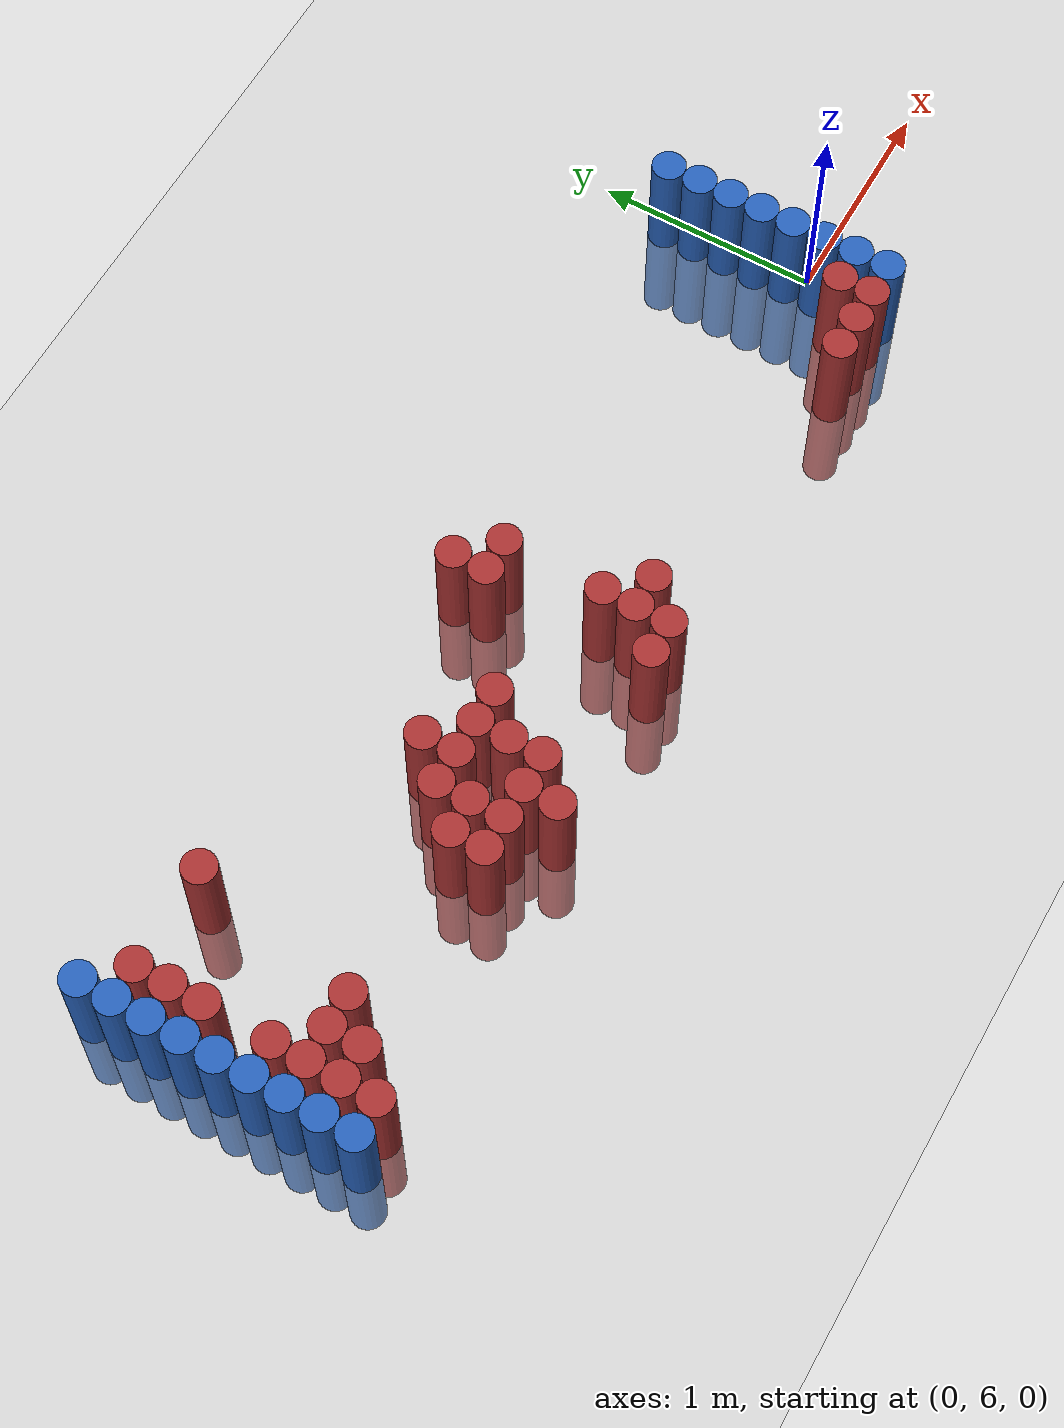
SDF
<sdf version="1.6">
 <world name="default">
  <model name="ground_plane">
   <static>1</static>
   <link name="link">
    <collision name="collision">
     <geometry><plane><normal>0 0 1</normal><size>100 100</size></plane></geometry>
     <surface><friction><ode><mu>100</mu><mu2>50</mu2></ode></friction></surface>
    </collision>
    <visual name="visual">
     <cast_shadows>0</cast_shadows>
     <geometry><plane><normal>0 0 1</normal><size>100 100</size></plane></geometry>
     <material>
      <script><uri>file://media/materials/scripts/gazebo.material</uri><name>Gazebo/Grey</name></script>
     </material>
    </visual>
   </link>
  </model>
  <model name="unit_cylinder_99">
   <static>1</static>
   <pose>-4.425000 5.625000 0.000000 0.000000 0.000000 0.000000</pose>
   <link name="link">
    <inertial>
     <mass>1</mass>
     <inertia><ixx>0.145833</ixx><ixy>0</ixy><ixz>0</ixz><iyy>0.145833</iyy><iyz>0</iyz><izz>0.125</izz></inertia>
    </inertial>
    <collision name="collision">
     <geometry><cylinder><radius>0.075000</radius><length>1</length></cylinder></geometry>
    </collision>
    <visual name="visual">
     <geometry><cylinder><radius>0.075000</radius><length>1</length></cylinder></geometry>
     <material>
      <ambient>0.152000 0.379000 0.720000 1</ambient>
      <diffuse>0.152000 0.379000 0.720000 1</diffuse>
     </material>
     <material>
      <script><name>Gazebo/Grey</name><uri>file://media/materials/scripts/gazebo.material</uri></script>
     </material>
    </visual>
   </link>
  </model>
  <model name="unit_cylinder_100">
   <static>1</static>
   <pose>-4.425000 5.775000 0.000000 0.000000 0.000000 0.000000</pose>
   <link name="link">
    <inertial>
     <mass>1</mass>
     <inertia><ixx>0.145833</ixx><ixy>0</ixy><ixz>0</ixz><iyy>0.145833</iyy><iyz>0</iyz><izz>0.125</izz></inertia>
    </inertial>
    <collision name="collision">
     <geometry><cylinder><radius>0.075000</radius><length>1</length></cylinder></geometry>
    </collision>
    <visual name="visual">
     <geometry><cylinder><radius>0.075000</radius><length>1</length></cylinder></geometry>
     <material>
      <ambient>0.152000 0.379000 0.720000 1</ambient>
      <diffuse>0.152000 0.379000 0.720000 1</diffuse>
     </material>
     <material>
      <script><name>Gazebo/Grey</name><uri>file://media/materials/scripts/gazebo.material</uri></script>
     </material>
    </visual>
   </link>
  </model>
  <model name="unit_cylinder_101">
   <static>1</static>
   <pose>-4.425000 5.925000 0.000000 0.000000 0.000000 0.000000</pose>
   <link name="link">
    <inertial>
     <mass>1</mass>
     <inertia><ixx>0.145833</ixx><ixy>0</ixy><ixz>0</ixz><iyy>0.145833</iyy><iyz>0</iyz><izz>0.125</izz></inertia>
    </inertial>
    <collision name="collision">
     <geometry><cylinder><radius>0.075000</radius><length>1</length></cylinder></geometry>
    </collision>
    <visual name="visual">
     <geometry><cylinder><radius>0.075000</radius><length>1</length></cylinder></geometry>
     <material>
      <ambient>0.152000 0.379000 0.720000 1</ambient>
      <diffuse>0.152000 0.379000 0.720000 1</diffuse>
     </material>
     <material>
      <script><name>Gazebo/Grey</name><uri>file://media/materials/scripts/gazebo.material</uri></script>
     </material>
    </visual>
   </link>
  </model>
  <model name="unit_cylinder_102">
   <static>1</static>
   <pose>-4.425000 6.075000 0.000000 0.000000 0.000000 0.000000</pose>
   <link name="link">
    <inertial>
     <mass>1</mass>
     <inertia><ixx>0.145833</ixx><ixy>0</ixy><ixz>0</ixz><iyy>0.145833</iyy><iyz>0</iyz><izz>0.125</izz></inertia>
    </inertial>
    <collision name="collision">
     <geometry><cylinder><radius>0.075000</radius><length>1</length></cylinder></geometry>
    </collision>
    <visual name="visual">
     <geometry><cylinder><radius>0.075000</radius><length>1</length></cylinder></geometry>
     <material>
      <ambient>0.152000 0.379000 0.720000 1</ambient>
      <diffuse>0.152000 0.379000 0.720000 1</diffuse>
     </material>
     <material>
      <script><name>Gazebo/Grey</name><uri>file://media/materials/scripts/gazebo.material</uri></script>
     </material>
    </visual>
   </link>
  </model>
  <model name="unit_cylinder_103">
   <static>1</static>
   <pose>-4.425000 6.225000 0.000000 0.000000 0.000000 0.000000</pose>
   <link name="link">
    <inertial>
     <mass>1</mass>
     <inertia><ixx>0.145833</ixx><ixy>0</ixy><ixz>0</ixz><iyy>0.145833</iyy><iyz>0</iyz><izz>0.125</izz></inertia>
    </inertial>
    <collision name="collision">
     <geometry><cylinder><radius>0.075000</radius><length>1</length></cylinder></geometry>
    </collision>
    <visual name="visual">
     <geometry><cylinder><radius>0.075000</radius><length>1</length></cylinder></geometry>
     <material>
      <ambient>0.152000 0.379000 0.720000 1</ambient>
      <diffuse>0.152000 0.379000 0.720000 1</diffuse>
     </material>
     <material>
      <script><name>Gazebo/Grey</name><uri>file://media/materials/scripts/gazebo.material</uri></script>
     </material>
    </visual>
   </link>
  </model>
  <model name="unit_cylinder_104">
   <static>1</static>
   <pose>-4.425000 6.375000 0.000000 0.000000 0.000000 0.000000</pose>
   <link name="link">
    <inertial>
     <mass>1</mass>
     <inertia><ixx>0.145833</ixx><ixy>0</ixy><ixz>0</ixz><iyy>0.145833</iyy><iyz>0</iyz><izz>0.125</izz></inertia>
    </inertial>
    <collision name="collision">
     <geometry><cylinder><radius>0.075000</radius><length>1</length></cylinder></geometry>
    </collision>
    <visual name="visual">
     <geometry><cylinder><radius>0.075000</radius><length>1</length></cylinder></geometry>
     <material>
      <ambient>0.152000 0.379000 0.720000 1</ambient>
      <diffuse>0.152000 0.379000 0.720000 1</diffuse>
     </material>
     <material>
      <script><name>Gazebo/Grey</name><uri>file://media/materials/scripts/gazebo.material</uri></script>
     </material>
    </visual>
   </link>
  </model>
  <model name="unit_cylinder_105">
   <static>1</static>
   <pose>-4.425000 6.525000 0.000000 0.000000 0.000000 0.000000</pose>
   <link name="link">
    <inertial>
     <mass>1</mass>
     <inertia><ixx>0.145833</ixx><ixy>0</ixy><ixz>0</ixz><iyy>0.145833</iyy><iyz>0</iyz><izz>0.125</izz></inertia>
    </inertial>
    <collision name="collision">
     <geometry><cylinder><radius>0.075000</radius><length>1</length></cylinder></geometry>
    </collision>
    <visual name="visual">
     <geometry><cylinder><radius>0.075000</radius><length>1</length></cylinder></geometry>
     <material>
      <ambient>0.152000 0.379000 0.720000 1</ambient>
      <diffuse>0.152000 0.379000 0.720000 1</diffuse>
     </material>
     <material>
      <script><name>Gazebo/Grey</name><uri>file://media/materials/scripts/gazebo.material</uri></script>
     </material>
    </visual>
   </link>
  </model>
  <model name="unit_cylinder_106">
   <static>1</static>
   <pose>-4.425000 6.675000 0.000000 0.000000 0.000000 0.000000</pose>
   <link name="link">
    <inertial>
     <mass>1</mass>
     <inertia><ixx>0.145833</ixx><ixy>0</ixy><ixz>0</ixz><iyy>0.145833</iyy><iyz>0</iyz><izz>0.125</izz></inertia>
    </inertial>
    <collision name="collision">
     <geometry><cylinder><radius>0.075000</radius><length>1</length></cylinder></geometry>
    </collision>
    <visual name="visual">
     <geometry><cylinder><radius>0.075000</radius><length>1</length></cylinder></geometry>
     <material>
      <ambient>0.152000 0.379000 0.720000 1</ambient>
      <diffuse>0.152000 0.379000 0.720000 1</diffuse>
     </material>
     <material>
      <script><name>Gazebo/Grey</name><uri>file://media/materials/scripts/gazebo.material</uri></script>
     </material>
    </visual>
   </link>
  </model>
  <model name="unit_cylinder_107">
   <static>1</static>
   <pose>-4.425000 6.825000 0.000000 0.000000 0.000000 0.000000</pose>
   <link name="link">
    <inertial>
     <mass>1</mass>
     <inertia><ixx>0.145833</ixx><ixy>0</ixy><ixz>0</ixz><iyy>0.145833</iyy><iyz>0</iyz><izz>0.125</izz></inertia>
    </inertial>
    <collision name="collision">
     <geometry><cylinder><radius>0.075000</radius><length>1</length></cylinder></geometry>
    </collision>
    <visual name="visual">
     <geometry><cylinder><radius>0.075000</radius><length>1</length></cylinder></geometry>
     <material>
      <ambient>0.152000 0.379000 0.720000 1</ambient>
      <diffuse>0.152000 0.379000 0.720000 1</diffuse>
     </material>
     <material>
      <script><name>Gazebo/Grey</name><uri>file://media/materials/scripts/gazebo.material</uri></script>
     </material>
    </visual>
   </link>
  </model>
  <model name="unit_cylinder_127">
   <static>1</static>
   <pose>-4.275000 5.625000 0.000000 0.000000 0.000000 0.000000</pose>
   <link name="link">
    <inertial>
     <mass>1</mass>
     <inertia><ixx>0.145833</ixx><ixy>0</ixy><ixz>0</ixz><iyy>0.145833</iyy><iyz>0</iyz><izz>0.125</izz></inertia>
    </inertial>
    <collision name="collision">
     <geometry><cylinder><radius>0.075000</radius><length>1</length></cylinder></geometry>
    </collision>
    <visual name="visual">
     <geometry><cylinder><radius>0.075000</radius><length>1</length></cylinder></geometry>
     <material>
      <ambient>0.648000 0.192000 0.192000 1</ambient>
      <diffuse>0.648000 0.192000 0.192000 1</diffuse>
     </material>
     <material>
      <script><name>Gazebo/Grey</name><uri>file://media/materials/scripts/gazebo.material</uri></script>
     </material>
    </visual>
   </link>
  </model>
  <model name="unit_cylinder_128">
   <static>1</static>
   <pose>-4.275000 5.775000 0.000000 0.000000 0.000000 0.000000</pose>
   <link name="link">
    <inertial>
     <mass>1</mass>
     <inertia><ixx>0.145833</ixx><ixy>0</ixy><ixz>0</ixz><iyy>0.145833</iyy><iyz>0</iyz><izz>0.125</izz></inertia>
    </inertial>
    <collision name="collision">
     <geometry><cylinder><radius>0.075000</radius><length>1</length></cylinder></geometry>
    </collision>
    <visual name="visual">
     <geometry><cylinder><radius>0.075000</radius><length>1</length></cylinder></geometry>
     <material>
      <ambient>0.648000 0.192000 0.192000 1</ambient>
      <diffuse>0.648000 0.192000 0.192000 1</diffuse>
     </material>
     <material>
      <script><name>Gazebo/Grey</name><uri>file://media/materials/scripts/gazebo.material</uri></script>
     </material>
    </visual>
   </link>
  </model>
  <model name="unit_cylinder_129">
   <static>1</static>
   <pose>-4.275000 5.925000 0.000000 0.000000 0.000000 0.000000</pose>
   <link name="link">
    <inertial>
     <mass>1</mass>
     <inertia><ixx>0.145833</ixx><ixy>0</ixy><ixz>0</ixz><iyy>0.145833</iyy><iyz>0</iyz><izz>0.125</izz></inertia>
    </inertial>
    <collision name="collision">
     <geometry><cylinder><radius>0.075000</radius><length>1</length></cylinder></geometry>
    </collision>
    <visual name="visual">
     <geometry><cylinder><radius>0.075000</radius><length>1</length></cylinder></geometry>
     <material>
      <ambient>0.648000 0.192000 0.192000 1</ambient>
      <diffuse>0.648000 0.192000 0.192000 1</diffuse>
     </material>
     <material>
      <script><name>Gazebo/Grey</name><uri>file://media/materials/scripts/gazebo.material</uri></script>
     </material>
    </visual>
   </link>
  </model>
  <model name="unit_cylinder_130">
   <static>1</static>
   <pose>-4.275000 6.075000 0.000000 0.000000 0.000000 0.000000</pose>
   <link name="link">
    <inertial>
     <mass>1</mass>
     <inertia><ixx>0.145833</ixx><ixy>0</ixy><ixz>0</ixz><iyy>0.145833</iyy><iyz>0</iyz><izz>0.125</izz></inertia>
    </inertial>
    <collision name="collision">
     <geometry><cylinder><radius>0.075000</radius><length>1</length></cylinder></geometry>
    </collision>
    <visual name="visual">
     <geometry><cylinder><radius>0.075000</radius><length>1</length></cylinder></geometry>
     <material>
      <ambient>0.648000 0.192000 0.192000 1</ambient>
      <diffuse>0.648000 0.192000 0.192000 1</diffuse>
     </material>
     <material>
      <script><name>Gazebo/Grey</name><uri>file://media/materials/scripts/gazebo.material</uri></script>
     </material>
    </visual>
   </link>
  </model>
  <model name="unit_cylinder_131">
   <static>1</static>
   <pose>-4.275000 6.375000 0.000000 0.000000 0.000000 0.000000</pose>
   <link name="link">
    <inertial>
     <mass>1</mass>
     <inertia><ixx>0.145833</ixx><ixy>0</ixy><ixz>0</ixz><iyy>0.145833</iyy><iyz>0</iyz><izz>0.125</izz></inertia>
    </inertial>
    <collision name="collision">
     <geometry><cylinder><radius>0.075000</radius><length>1</length></cylinder></geometry>
    </collision>
    <visual name="visual">
     <geometry><cylinder><radius>0.075000</radius><length>1</length></cylinder></geometry>
     <material>
      <ambient>0.648000 0.192000 0.192000 1</ambient>
      <diffuse>0.648000 0.192000 0.192000 1</diffuse>
     </material>
     <material>
      <script><name>Gazebo/Grey</name><uri>file://media/materials/scripts/gazebo.material</uri></script>
     </material>
    </visual>
   </link>
  </model>
  <model name="unit_cylinder_132">
   <static>1</static>
   <pose>-4.275000 6.525000 0.000000 0.000000 0.000000 0.000000</pose>
   <link name="link">
    <inertial>
     <mass>1</mass>
     <inertia><ixx>0.145833</ixx><ixy>0</ixy><ixz>0</ixz><iyy>0.145833</iyy><iyz>0</iyz><izz>0.125</izz></inertia>
    </inertial>
    <collision name="collision">
     <geometry><cylinder><radius>0.075000</radius><length>1</length></cylinder></geometry>
    </collision>
    <visual name="visual">
     <geometry><cylinder><radius>0.075000</radius><length>1</length></cylinder></geometry>
     <material>
      <ambient>0.648000 0.192000 0.192000 1</ambient>
      <diffuse>0.648000 0.192000 0.192000 1</diffuse>
     </material>
     <material>
      <script><name>Gazebo/Grey</name><uri>file://media/materials/scripts/gazebo.material</uri></script>
     </material>
    </visual>
   </link>
  </model>
  <model name="unit_cylinder_133">
   <static>1</static>
   <pose>-4.275000 6.675000 0.000000 0.000000 0.000000 0.000000</pose>
   <link name="link">
    <inertial>
     <mass>1</mass>
     <inertia><ixx>0.145833</ixx><ixy>0</ixy><ixz>0</ixz><iyy>0.145833</iyy><iyz>0</iyz><izz>0.125</izz></inertia>
    </inertial>
    <collision name="collision">
     <geometry><cylinder><radius>0.075000</radius><length>1</length></cylinder></geometry>
    </collision>
    <visual name="visual">
     <geometry><cylinder><radius>0.075000</radius><length>1</length></cylinder></geometry>
     <material>
      <ambient>0.648000 0.192000 0.192000 1</ambient>
      <diffuse>0.648000 0.192000 0.192000 1</diffuse>
     </material>
     <material>
      <script><name>Gazebo/Grey</name><uri>file://media/materials/scripts/gazebo.material</uri></script>
     </material>
    </visual>
   </link>
  </model>
  <model name="unit_cylinder_136">
   <static>1</static>
   <pose>-4.125000 5.775000 0.000000 0.000000 0.000000 0.000000</pose>
   <link name="link">
    <inertial>
     <mass>1</mass>
     <inertia><ixx>0.145833</ixx><ixy>0</ixy><ixz>0</ixz><iyy>0.145833</iyy><iyz>0</iyz><izz>0.125</izz></inertia>
    </inertial>
    <collision name="collision">
     <geometry><cylinder><radius>0.075000</radius><length>1</length></cylinder></geometry>
    </collision>
    <visual name="visual">
     <geometry><cylinder><radius>0.075000</radius><length>1</length></cylinder></geometry>
     <material>
      <ambient>0.648000 0.192000 0.192000 1</ambient>
      <diffuse>0.648000 0.192000 0.192000 1</diffuse>
     </material>
     <material>
      <script><name>Gazebo/Grey</name><uri>file://media/materials/scripts/gazebo.material</uri></script>
     </material>
    </visual>
   </link>
  </model>
  <model name="unit_cylinder_137">
   <static>1</static>
   <pose>-4.125000 5.925000 0.000000 0.000000 0.000000 0.000000</pose>
   <link name="link">
    <inertial>
     <mass>1</mass>
     <inertia><ixx>0.145833</ixx><ixy>0</ixy><ixz>0</ixz><iyy>0.145833</iyy><iyz>0</iyz><izz>0.125</izz></inertia>
    </inertial>
    <collision name="collision">
     <geometry><cylinder><radius>0.075000</radius><length>1</length></cylinder></geometry>
    </collision>
    <visual name="visual">
     <geometry><cylinder><radius>0.075000</radius><length>1</length></cylinder></geometry>
     <material>
      <ambient>0.648000 0.192000 0.192000 1</ambient>
      <diffuse>0.648000 0.192000 0.192000 1</diffuse>
     </material>
     <material>
      <script><name>Gazebo/Grey</name><uri>file://media/materials/scripts/gazebo.material</uri></script>
     </material>
    </visual>
   </link>
  </model>
  <model name="unit_cylinder_140">
   <static>1</static>
   <pose>-3.975000 5.925000 0.000000 0.000000 0.000000 0.000000</pose>
   <link name="link">
    <inertial>
     <mass>1</mass>
     <inertia><ixx>0.145833</ixx><ixy>0</ixy><ixz>0</ixz><iyy>0.145833</iyy><iyz>0</iyz><izz>0.125</izz></inertia>
    </inertial>
    <collision name="collision">
     <geometry><cylinder><radius>0.075000</radius><length>1</length></cylinder></geometry>
    </collision>
    <visual name="visual">
     <geometry><cylinder><radius>0.075000</radius><length>1</length></cylinder></geometry>
     <material>
      <ambient>0.648000 0.192000 0.192000 1</ambient>
      <diffuse>0.648000 0.192000 0.192000 1</diffuse>
     </material>
     <material>
      <script><name>Gazebo/Grey</name><uri>file://media/materials/scripts/gazebo.material</uri></script>
     </material>
    </visual>
   </link>
  </model>
  <model name="unit_cylinder_147">
   <static>1</static>
   <pose>-3.825000 6.675000 0.000000 0.000000 0.000000 0.000000</pose>
   <link name="link">
    <inertial>
     <mass>1</mass>
     <inertia><ixx>0.145833</ixx><ixy>0</ixy><ixz>0</ixz><iyy>0.145833</iyy><iyz>0</iyz><izz>0.125</izz></inertia>
    </inertial>
    <collision name="collision">
     <geometry><cylinder><radius>0.075000</radius><length>1</length></cylinder></geometry>
    </collision>
    <visual name="visual">
     <geometry><cylinder><radius>0.075000</radius><length>1</length></cylinder></geometry>
     <material>
      <ambient>0.648000 0.192000 0.192000 1</ambient>
      <diffuse>0.648000 0.192000 0.192000 1</diffuse>
     </material>
     <material>
      <script><name>Gazebo/Grey</name><uri>file://media/materials/scripts/gazebo.material</uri></script>
     </material>
    </visual>
   </link>
  </model>
  <model name="unit_cylinder_169">
   <static>1</static>
   <pose>-3.225000 5.775000 0.000000 0.000000 0.000000 0.000000</pose>
   <link name="link">
    <inertial>
     <mass>1</mass>
     <inertia><ixx>0.145833</ixx><ixy>0</ixy><ixz>0</ixz><iyy>0.145833</iyy><iyz>0</iyz><izz>0.125</izz></inertia>
    </inertial>
    <collision name="collision">
     <geometry><cylinder><radius>0.075000</radius><length>1</length></cylinder></geometry>
    </collision>
    <visual name="visual">
     <geometry><cylinder><radius>0.075000</radius><length>1</length></cylinder></geometry>
     <material>
      <ambient>0.648000 0.192000 0.192000 1</ambient>
      <diffuse>0.648000 0.192000 0.192000 1</diffuse>
     </material>
     <material>
      <script><name>Gazebo/Grey</name><uri>file://media/materials/scripts/gazebo.material</uri></script>
     </material>
    </visual>
   </link>
  </model>
  <model name="unit_cylinder_170">
   <static>1</static>
   <pose>-3.225000 5.925000 0.000000 0.000000 0.000000 0.000000</pose>
   <link name="link">
    <inertial>
     <mass>1</mass>
     <inertia><ixx>0.145833</ixx><ixy>0</ixy><ixz>0</ixz><iyy>0.145833</iyy><iyz>0</iyz><izz>0.125</izz></inertia>
    </inertial>
    <collision name="collision">
     <geometry><cylinder><radius>0.075000</radius><length>1</length></cylinder></geometry>
    </collision>
    <visual name="visual">
     <geometry><cylinder><radius>0.075000</radius><length>1</length></cylinder></geometry>
     <material>
      <ambient>0.648000 0.192000 0.192000 1</ambient>
      <diffuse>0.648000 0.192000 0.192000 1</diffuse>
     </material>
     <material>
      <script><name>Gazebo/Grey</name><uri>file://media/materials/scripts/gazebo.material</uri></script>
     </material>
    </visual>
   </link>
  </model>
  <model name="unit_cylinder_183">
   <static>1</static>
   <pose>-3.075000 5.775000 0.000000 0.000000 0.000000 0.000000</pose>
   <link name="link">
    <inertial>
     <mass>1</mass>
     <inertia><ixx>0.145833</ixx><ixy>0</ixy><ixz>0</ixz><iyy>0.145833</iyy><iyz>0</iyz><izz>0.125</izz></inertia>
    </inertial>
    <collision name="collision">
     <geometry><cylinder><radius>0.075000</radius><length>1</length></cylinder></geometry>
    </collision>
    <visual name="visual">
     <geometry><cylinder><radius>0.075000</radius><length>1</length></cylinder></geometry>
     <material>
      <ambient>0.648000 0.192000 0.192000 1</ambient>
      <diffuse>0.648000 0.192000 0.192000 1</diffuse>
     </material>
     <material>
      <script><name>Gazebo/Grey</name><uri>file://media/materials/scripts/gazebo.material</uri></script>
     </material>
    </visual>
   </link>
  </model>
  <model name="unit_cylinder_184">
   <static>1</static>
   <pose>-3.075000 5.925000 0.000000 0.000000 0.000000 0.000000</pose>
   <link name="link">
    <inertial>
     <mass>1</mass>
     <inertia><ixx>0.145833</ixx><ixy>0</ixy><ixz>0</ixz><iyy>0.145833</iyy><iyz>0</iyz><izz>0.125</izz></inertia>
    </inertial>
    <collision name="collision">
     <geometry><cylinder><radius>0.075000</radius><length>1</length></cylinder></geometry>
    </collision>
    <visual name="visual">
     <geometry><cylinder><radius>0.075000</radius><length>1</length></cylinder></geometry>
     <material>
      <ambient>0.648000 0.192000 0.192000 1</ambient>
      <diffuse>0.648000 0.192000 0.192000 1</diffuse>
     </material>
     <material>
      <script><name>Gazebo/Grey</name><uri>file://media/materials/scripts/gazebo.material</uri></script>
     </material>
    </visual>
   </link>
  </model>
  <model name="unit_cylinder_185">
   <static>1</static>
   <pose>-3.075000 6.075000 0.000000 0.000000 0.000000 0.000000</pose>
   <link name="link">
    <inertial>
     <mass>1</mass>
     <inertia><ixx>0.145833</ixx><ixy>0</ixy><ixz>0</ixz><iyy>0.145833</iyy><iyz>0</iyz><izz>0.125</izz></inertia>
    </inertial>
    <collision name="collision">
     <geometry><cylinder><radius>0.075000</radius><length>1</length></cylinder></geometry>
    </collision>
    <visual name="visual">
     <geometry><cylinder><radius>0.075000</radius><length>1</length></cylinder></geometry>
     <material>
      <ambient>0.648000 0.192000 0.192000 1</ambient>
      <diffuse>0.648000 0.192000 0.192000 1</diffuse>
     </material>
     <material>
      <script><name>Gazebo/Grey</name><uri>file://media/materials/scripts/gazebo.material</uri></script>
     </material>
    </visual>
   </link>
  </model>
  <model name="unit_cylinder_195">
   <static>1</static>
   <pose>-2.925000 5.625000 0.000000 0.000000 0.000000 0.000000</pose>
   <link name="link">
    <inertial>
     <mass>1</mass>
     <inertia><ixx>0.145833</ixx><ixy>0</ixy><ixz>0</ixz><iyy>0.145833</iyy><iyz>0</iyz><izz>0.125</izz></inertia>
    </inertial>
    <collision name="collision">
     <geometry><cylinder><radius>0.075000</radius><length>1</length></cylinder></geometry>
    </collision>
    <visual name="visual">
     <geometry><cylinder><radius>0.075000</radius><length>1</length></cylinder></geometry>
     <material>
      <ambient>0.648000 0.192000 0.192000 1</ambient>
      <diffuse>0.648000 0.192000 0.192000 1</diffuse>
     </material>
     <material>
      <script><name>Gazebo/Grey</name><uri>file://media/materials/scripts/gazebo.material</uri></script>
     </material>
    </visual>
   </link>
  </model>
  <model name="unit_cylinder_196">
   <static>1</static>
   <pose>-2.925000 5.775000 0.000000 0.000000 0.000000 0.000000</pose>
   <link name="link">
    <inertial>
     <mass>1</mass>
     <inertia><ixx>0.145833</ixx><ixy>0</ixy><ixz>0</ixz><iyy>0.145833</iyy><iyz>0</iyz><izz>0.125</izz></inertia>
    </inertial>
    <collision name="collision">
     <geometry><cylinder><radius>0.075000</radius><length>1</length></cylinder></geometry>
    </collision>
    <visual name="visual">
     <geometry><cylinder><radius>0.075000</radius><length>1</length></cylinder></geometry>
     <material>
      <ambient>0.648000 0.192000 0.192000 1</ambient>
      <diffuse>0.648000 0.192000 0.192000 1</diffuse>
     </material>
     <material>
      <script><name>Gazebo/Grey</name><uri>file://media/materials/scripts/gazebo.material</uri></script>
     </material>
    </visual>
   </link>
  </model>
  <model name="unit_cylinder_197">
   <static>1</static>
   <pose>-2.925000 6.075000 0.000000 0.000000 0.000000 0.000000</pose>
   <link name="link">
    <inertial>
     <mass>1</mass>
     <inertia><ixx>0.145833</ixx><ixy>0</ixy><ixz>0</ixz><iyy>0.145833</iyy><iyz>0</iyz><izz>0.125</izz></inertia>
    </inertial>
    <collision name="collision">
     <geometry><cylinder><radius>0.075000</radius><length>1</length></cylinder></geometry>
    </collision>
    <visual name="visual">
     <geometry><cylinder><radius>0.075000</radius><length>1</length></cylinder></geometry>
     <material>
      <ambient>0.648000 0.192000 0.192000 1</ambient>
      <diffuse>0.648000 0.192000 0.192000 1</diffuse>
     </material>
     <material>
      <script><name>Gazebo/Grey</name><uri>file://media/materials/scripts/gazebo.material</uri></script>
     </material>
    </visual>
   </link>
  </model>
  <model name="unit_cylinder_198">
   <static>1</static>
   <pose>-2.925000 6.225000 0.000000 0.000000 0.000000 0.000000</pose>
   <link name="link">
    <inertial>
     <mass>1</mass>
     <inertia><ixx>0.145833</ixx><ixy>0</ixy><ixz>0</ixz><iyy>0.145833</iyy><iyz>0</iyz><izz>0.125</izz></inertia>
    </inertial>
    <collision name="collision">
     <geometry><cylinder><radius>0.075000</radius><length>1</length></cylinder></geometry>
    </collision>
    <visual name="visual">
     <geometry><cylinder><radius>0.075000</radius><length>1</length></cylinder></geometry>
     <material>
      <ambient>0.648000 0.192000 0.192000 1</ambient>
      <diffuse>0.648000 0.192000 0.192000 1</diffuse>
     </material>
     <material>
      <script><name>Gazebo/Grey</name><uri>file://media/materials/scripts/gazebo.material</uri></script>
     </material>
    </visual>
   </link>
  </model>
  <model name="unit_cylinder_202">
   <static>1</static>
   <pose>-2.775000 5.775000 0.000000 0.000000 0.000000 0.000000</pose>
   <link name="link">
    <inertial>
     <mass>1</mass>
     <inertia><ixx>0.145833</ixx><ixy>0</ixy><ixz>0</ixz><iyy>0.145833</iyy><iyz>0</iyz><izz>0.125</izz></inertia>
    </inertial>
    <collision name="collision">
     <geometry><cylinder><radius>0.075000</radius><length>1</length></cylinder></geometry>
    </collision>
    <visual name="visual">
     <geometry><cylinder><radius>0.075000</radius><length>1</length></cylinder></geometry>
     <material>
      <ambient>0.648000 0.192000 0.192000 1</ambient>
      <diffuse>0.648000 0.192000 0.192000 1</diffuse>
     </material>
     <material>
      <script><name>Gazebo/Grey</name><uri>file://media/materials/scripts/gazebo.material</uri></script>
     </material>
    </visual>
   </link>
  </model>
  <model name="unit_cylinder_203">
   <static>1</static>
   <pose>-2.775000 5.925000 0.000000 0.000000 0.000000 0.000000</pose>
   <link name="link">
    <inertial>
     <mass>1</mass>
     <inertia><ixx>0.145833</ixx><ixy>0</ixy><ixz>0</ixz><iyy>0.145833</iyy><iyz>0</iyz><izz>0.125</izz></inertia>
    </inertial>
    <collision name="collision">
     <geometry><cylinder><radius>0.075000</radius><length>1</length></cylinder></geometry>
    </collision>
    <visual name="visual">
     <geometry><cylinder><radius>0.075000</radius><length>1</length></cylinder></geometry>
     <material>
      <ambient>0.648000 0.192000 0.192000 1</ambient>
      <diffuse>0.648000 0.192000 0.192000 1</diffuse>
     </material>
     <material>
      <script><name>Gazebo/Grey</name><uri>file://media/materials/scripts/gazebo.material</uri></script>
     </material>
    </visual>
   </link>
  </model>
  <model name="unit_cylinder_204">
   <static>1</static>
   <pose>-2.775000 6.075000 0.000000 0.000000 0.000000 0.000000</pose>
   <link name="link">
    <inertial>
     <mass>1</mass>
     <inertia><ixx>0.145833</ixx><ixy>0</ixy><ixz>0</ixz><iyy>0.145833</iyy><iyz>0</iyz><izz>0.125</izz></inertia>
    </inertial>
    <collision name="collision">
     <geometry><cylinder><radius>0.075000</radius><length>1</length></cylinder></geometry>
    </collision>
    <visual name="visual">
     <geometry><cylinder><radius>0.075000</radius><length>1</length></cylinder></geometry>
     <material>
      <ambient>0.648000 0.192000 0.192000 1</ambient>
      <diffuse>0.648000 0.192000 0.192000 1</diffuse>
     </material>
     <material>
      <script><name>Gazebo/Grey</name><uri>file://media/materials/scripts/gazebo.material</uri></script>
     </material>
    </visual>
   </link>
  </model>
  <model name="unit_cylinder_210">
   <static>1</static>
   <pose>-2.625000 6.075000 0.000000 0.000000 0.000000 0.000000</pose>
   <link name="link">
    <inertial>
     <mass>1</mass>
     <inertia><ixx>0.145833</ixx><ixy>0</ixy><ixz>0</ixz><iyy>0.145833</iyy><iyz>0</iyz><izz>0.125</izz></inertia>
    </inertial>
    <collision name="collision">
     <geometry><cylinder><radius>0.075000</radius><length>1</length></cylinder></geometry>
    </collision>
    <visual name="visual">
     <geometry><cylinder><radius>0.075000</radius><length>1</length></cylinder></geometry>
     <material>
      <ambient>0.648000 0.192000 0.192000 1</ambient>
      <diffuse>0.648000 0.192000 0.192000 1</diffuse>
     </material>
     <material>
      <script><name>Gazebo/Grey</name><uri>file://media/materials/scripts/gazebo.material</uri></script>
     </material>
    </visual>
   </link>
  </model>
  <model name="unit_cylinder_227">
   <static>1</static>
   <pose>-2.175000 5.625000 0.000000 0.000000 0.000000 0.000000</pose>
   <link name="link">
    <inertial>
     <mass>1</mass>
     <inertia><ixx>0.145833</ixx><ixy>0</ixy><ixz>0</ixz><iyy>0.145833</iyy><iyz>0</iyz><izz>0.125</izz></inertia>
    </inertial>
    <collision name="collision">
     <geometry><cylinder><radius>0.075000</radius><length>1</length></cylinder></geometry>
    </collision>
    <visual name="visual">
     <geometry><cylinder><radius>0.075000</radius><length>1</length></cylinder></geometry>
     <material>
      <ambient>0.648000 0.192000 0.192000 1</ambient>
      <diffuse>0.648000 0.192000 0.192000 1</diffuse>
     </material>
     <material>
      <script><name>Gazebo/Grey</name><uri>file://media/materials/scripts/gazebo.material</uri></script>
     </material>
    </visual>
   </link>
  </model>
  <model name="unit_cylinder_228">
   <static>1</static>
   <pose>-2.175000 6.375000 0.000000 0.000000 0.000000 0.000000</pose>
   <link name="link">
    <inertial>
     <mass>1</mass>
     <inertia><ixx>0.145833</ixx><ixy>0</ixy><ixz>0</ixz><iyy>0.145833</iyy><iyz>0</iyz><izz>0.125</izz></inertia>
    </inertial>
    <collision name="collision">
     <geometry><cylinder><radius>0.075000</radius><length>1</length></cylinder></geometry>
    </collision>
    <visual name="visual">
     <geometry><cylinder><radius>0.075000</radius><length>1</length></cylinder></geometry>
     <material>
      <ambient>0.648000 0.192000 0.192000 1</ambient>
      <diffuse>0.648000 0.192000 0.192000 1</diffuse>
     </material>
     <material>
      <script><name>Gazebo/Grey</name><uri>file://media/materials/scripts/gazebo.material</uri></script>
     </material>
    </visual>
   </link>
  </model>
  <model name="unit_cylinder_229">
   <static>1</static>
   <pose>-2.175000 6.525000 0.000000 0.000000 0.000000 0.000000</pose>
   <link name="link">
    <inertial>
     <mass>1</mass>
     <inertia><ixx>0.145833</ixx><ixy>0</ixy><ixz>0</ixz><iyy>0.145833</iyy><iyz>0</iyz><izz>0.125</izz></inertia>
    </inertial>
    <collision name="collision">
     <geometry><cylinder><radius>0.075000</radius><length>1</length></cylinder></geometry>
    </collision>
    <visual name="visual">
     <geometry><cylinder><radius>0.075000</radius><length>1</length></cylinder></geometry>
     <material>
      <ambient>0.648000 0.192000 0.192000 1</ambient>
      <diffuse>0.648000 0.192000 0.192000 1</diffuse>
     </material>
     <material>
      <script><name>Gazebo/Grey</name><uri>file://media/materials/scripts/gazebo.material</uri></script>
     </material>
    </visual>
   </link>
  </model>
  <model name="unit_cylinder_233">
   <static>1</static>
   <pose>-2.025000 5.625000 0.000000 0.000000 0.000000 0.000000</pose>
   <link name="link">
    <inertial>
     <mass>1</mass>
     <inertia><ixx>0.145833</ixx><ixy>0</ixy><ixz>0</ixz><iyy>0.145833</iyy><iyz>0</iyz><izz>0.125</izz></inertia>
    </inertial>
    <collision name="collision">
     <geometry><cylinder><radius>0.075000</radius><length>1</length></cylinder></geometry>
    </collision>
    <visual name="visual">
     <geometry><cylinder><radius>0.075000</radius><length>1</length></cylinder></geometry>
     <material>
      <ambient>0.648000 0.192000 0.192000 1</ambient>
      <diffuse>0.648000 0.192000 0.192000 1</diffuse>
     </material>
     <material>
      <script><name>Gazebo/Grey</name><uri>file://media/materials/scripts/gazebo.material</uri></script>
     </material>
    </visual>
   </link>
  </model>
  <model name="unit_cylinder_234">
   <static>1</static>
   <pose>-2.025000 5.775000 0.000000 0.000000 0.000000 0.000000</pose>
   <link name="link">
    <inertial>
     <mass>1</mass>
     <inertia><ixx>0.145833</ixx><ixy>0</ixy><ixz>0</ixz><iyy>0.145833</iyy><iyz>0</iyz><izz>0.125</izz></inertia>
    </inertial>
    <collision name="collision">
     <geometry><cylinder><radius>0.075000</radius><length>1</length></cylinder></geometry>
    </collision>
    <visual name="visual">
     <geometry><cylinder><radius>0.075000</radius><length>1</length></cylinder></geometry>
     <material>
      <ambient>0.648000 0.192000 0.192000 1</ambient>
      <diffuse>0.648000 0.192000 0.192000 1</diffuse>
     </material>
     <material>
      <script><name>Gazebo/Grey</name><uri>file://media/materials/scripts/gazebo.material</uri></script>
     </material>
    </visual>
   </link>
  </model>
  <model name="unit_cylinder_235">
   <static>1</static>
   <pose>-2.025000 5.925000 0.000000 0.000000 0.000000 0.000000</pose>
   <link name="link">
    <inertial>
     <mass>1</mass>
     <inertia><ixx>0.145833</ixx><ixy>0</ixy><ixz>0</ixz><iyy>0.145833</iyy><iyz>0</iyz><izz>0.125</izz></inertia>
    </inertial>
    <collision name="collision">
     <geometry><cylinder><radius>0.075000</radius><length>1</length></cylinder></geometry>
    </collision>
    <visual name="visual">
     <geometry><cylinder><radius>0.075000</radius><length>1</length></cylinder></geometry>
     <material>
      <ambient>0.648000 0.192000 0.192000 1</ambient>
      <diffuse>0.648000 0.192000 0.192000 1</diffuse>
     </material>
     <material>
      <script><name>Gazebo/Grey</name><uri>file://media/materials/scripts/gazebo.material</uri></script>
     </material>
    </visual>
   </link>
  </model>
  <model name="unit_cylinder_236">
   <static>1</static>
   <pose>-2.025000 6.375000 0.000000 0.000000 0.000000 0.000000</pose>
   <link name="link">
    <inertial>
     <mass>1</mass>
     <inertia><ixx>0.145833</ixx><ixy>0</ixy><ixz>0</ixz><iyy>0.145833</iyy><iyz>0</iyz><izz>0.125</izz></inertia>
    </inertial>
    <collision name="collision">
     <geometry><cylinder><radius>0.075000</radius><length>1</length></cylinder></geometry>
    </collision>
    <visual name="visual">
     <geometry><cylinder><radius>0.075000</radius><length>1</length></cylinder></geometry>
     <material>
      <ambient>0.648000 0.192000 0.192000 1</ambient>
      <diffuse>0.648000 0.192000 0.192000 1</diffuse>
     </material>
     <material>
      <script><name>Gazebo/Grey</name><uri>file://media/materials/scripts/gazebo.material</uri></script>
     </material>
    </visual>
   </link>
  </model>
  <model name="unit_cylinder_240">
   <static>1</static>
   <pose>-1.875000 5.775000 0.000000 0.000000 0.000000 0.000000</pose>
   <link name="link">
    <inertial>
     <mass>1</mass>
     <inertia><ixx>0.145833</ixx><ixy>0</ixy><ixz>0</ixz><iyy>0.145833</iyy><iyz>0</iyz><izz>0.125</izz></inertia>
    </inertial>
    <collision name="collision">
     <geometry><cylinder><radius>0.075000</radius><length>1</length></cylinder></geometry>
    </collision>
    <visual name="visual">
     <geometry><cylinder><radius>0.075000</radius><length>1</length></cylinder></geometry>
     <material>
      <ambient>0.648000 0.192000 0.192000 1</ambient>
      <diffuse>0.648000 0.192000 0.192000 1</diffuse>
     </material>
     <material>
      <script><name>Gazebo/Grey</name><uri>file://media/materials/scripts/gazebo.material</uri></script>
     </material>
    </visual>
   </link>
  </model>
  <model name="unit_cylinder_265">
   <static>1</static>
   <pose>-0.525000 5.625000 0.000000 0.000000 0.000000 0.000000</pose>
   <link name="link">
    <inertial>
     <mass>1</mass>
     <inertia><ixx>0.145833</ixx><ixy>0</ixy><ixz>0</ixz><iyy>0.145833</iyy><iyz>0</iyz><izz>0.125</izz></inertia>
    </inertial>
    <collision name="collision">
     <geometry><cylinder><radius>0.075000</radius><length>1</length></cylinder></geometry>
    </collision>
    <visual name="visual">
     <geometry><cylinder><radius>0.075000</radius><length>1</length></cylinder></geometry>
     <material>
      <ambient>0.648000 0.192000 0.192000 1</ambient>
      <diffuse>0.648000 0.192000 0.192000 1</diffuse>
     </material>
     <material>
      <script><name>Gazebo/Grey</name><uri>file://media/materials/scripts/gazebo.material</uri></script>
     </material>
    </visual>
   </link>
  </model>
  <model name="unit_cylinder_269">
   <static>1</static>
   <pose>-0.375000 5.625000 0.000000 0.000000 0.000000 0.000000</pose>
   <link name="link">
    <inertial>
     <mass>1</mass>
     <inertia><ixx>0.145833</ixx><ixy>0</ixy><ixz>0</ixz><iyy>0.145833</iyy><iyz>0</iyz><izz>0.125</izz></inertia>
    </inertial>
    <collision name="collision">
     <geometry><cylinder><radius>0.075000</radius><length>1</length></cylinder></geometry>
    </collision>
    <visual name="visual">
     <geometry><cylinder><radius>0.075000</radius><length>1</length></cylinder></geometry>
     <material>
      <ambient>0.648000 0.192000 0.192000 1</ambient>
      <diffuse>0.648000 0.192000 0.192000 1</diffuse>
     </material>
     <material>
      <script><name>Gazebo/Grey</name><uri>file://media/materials/scripts/gazebo.material</uri></script>
     </material>
    </visual>
   </link>
  </model>
  <model name="unit_cylinder_275">
   <static>1</static>
   <pose>-0.225000 5.625000 0.000000 0.000000 0.000000 0.000000</pose>
   <link name="link">
    <inertial>
     <mass>1</mass>
     <inertia><ixx>0.145833</ixx><ixy>0</ixy><ixz>0</ixz><iyy>0.145833</iyy><iyz>0</iyz><izz>0.125</izz></inertia>
    </inertial>
    <collision name="collision">
     <geometry><cylinder><radius>0.075000</radius><length>1</length></cylinder></geometry>
    </collision>
    <visual name="visual">
     <geometry><cylinder><radius>0.075000</radius><length>1</length></cylinder></geometry>
     <material>
      <ambient>0.648000 0.192000 0.192000 1</ambient>
      <diffuse>0.648000 0.192000 0.192000 1</diffuse>
     </material>
     <material>
      <script><name>Gazebo/Grey</name><uri>file://media/materials/scripts/gazebo.material</uri></script>
     </material>
    </visual>
   </link>
  </model>
  <model name="unit_cylinder_276">
   <static>1</static>
   <pose>-0.225000 5.775000 0.000000 0.000000 0.000000 0.000000</pose>
   <link name="link">
    <inertial>
     <mass>1</mass>
     <inertia><ixx>0.145833</ixx><ixy>0</ixy><ixz>0</ixz><iyy>0.145833</iyy><iyz>0</iyz><izz>0.125</izz></inertia>
    </inertial>
    <collision name="collision">
     <geometry><cylinder><radius>0.075000</radius><length>1</length></cylinder></geometry>
    </collision>
    <visual name="visual">
     <geometry><cylinder><radius>0.075000</radius><length>1</length></cylinder></geometry>
     <material>
      <ambient>0.648000 0.192000 0.192000 1</ambient>
      <diffuse>0.648000 0.192000 0.192000 1</diffuse>
     </material>
     <material>
      <script><name>Gazebo/Grey</name><uri>file://media/materials/scripts/gazebo.material</uri></script>
     </material>
    </visual>
   </link>
  </model>
  <model name="unit_cylinder_293">
   <static>1</static>
   <pose>-0.075000 5.625000 0.000000 0.000000 0.000000 0.000000</pose>
   <link name="link">
    <inertial>
     <mass>1</mass>
     <inertia><ixx>0.145833</ixx><ixy>0</ixy><ixz>0</ixz><iyy>0.145833</iyy><iyz>0</iyz><izz>0.125</izz></inertia>
    </inertial>
    <collision name="collision">
     <geometry><cylinder><radius>0.075000</radius><length>1</length></cylinder></geometry>
    </collision>
    <visual name="visual">
     <geometry><cylinder><radius>0.075000</radius><length>1</length></cylinder></geometry>
     <material>
      <ambient>0.152000 0.379000 0.720000 1</ambient>
      <diffuse>0.152000 0.379000 0.720000 1</diffuse>
     </material>
     <material>
      <script><name>Gazebo/Grey</name><uri>file://media/materials/scripts/gazebo.material</uri></script>
     </material>
    </visual>
   </link>
  </model>
  <model name="unit_cylinder_294">
   <static>1</static>
   <pose>-0.075000 5.775000 0.000000 0.000000 0.000000 0.000000</pose>
   <link name="link">
    <inertial>
     <mass>1</mass>
     <inertia><ixx>0.145833</ixx><ixy>0</ixy><ixz>0</ixz><iyy>0.145833</iyy><iyz>0</iyz><izz>0.125</izz></inertia>
    </inertial>
    <collision name="collision">
     <geometry><cylinder><radius>0.075000</radius><length>1</length></cylinder></geometry>
    </collision>
    <visual name="visual">
     <geometry><cylinder><radius>0.075000</radius><length>1</length></cylinder></geometry>
     <material>
      <ambient>0.152000 0.379000 0.720000 1</ambient>
      <diffuse>0.152000 0.379000 0.720000 1</diffuse>
     </material>
     <material>
      <script><name>Gazebo/Grey</name><uri>file://media/materials/scripts/gazebo.material</uri></script>
     </material>
    </visual>
   </link>
  </model>
  <model name="unit_cylinder_295">
   <static>1</static>
   <pose>-0.075000 5.925000 0.000000 0.000000 0.000000 0.000000</pose>
   <link name="link">
    <inertial>
     <mass>1</mass>
     <inertia><ixx>0.145833</ixx><ixy>0</ixy><ixz>0</ixz><iyy>0.145833</iyy><iyz>0</iyz><izz>0.125</izz></inertia>
    </inertial>
    <collision name="collision">
     <geometry><cylinder><radius>0.075000</radius><length>1</length></cylinder></geometry>
    </collision>
    <visual name="visual">
     <geometry><cylinder><radius>0.075000</radius><length>1</length></cylinder></geometry>
     <material>
      <ambient>0.152000 0.379000 0.720000 1</ambient>
      <diffuse>0.152000 0.379000 0.720000 1</diffuse>
     </material>
     <material>
      <script><name>Gazebo/Grey</name><uri>file://media/materials/scripts/gazebo.material</uri></script>
     </material>
    </visual>
   </link>
  </model>
  <model name="unit_cylinder_296">
   <static>1</static>
   <pose>-0.075000 6.075000 0.000000 0.000000 0.000000 0.000000</pose>
   <link name="link">
    <inertial>
     <mass>1</mass>
     <inertia><ixx>0.145833</ixx><ixy>0</ixy><ixz>0</ixz><iyy>0.145833</iyy><iyz>0</iyz><izz>0.125</izz></inertia>
    </inertial>
    <collision name="collision">
     <geometry><cylinder><radius>0.075000</radius><length>1</length></cylinder></geometry>
    </collision>
    <visual name="visual">
     <geometry><cylinder><radius>0.075000</radius><length>1</length></cylinder></geometry>
     <material>
      <ambient>0.152000 0.379000 0.720000 1</ambient>
      <diffuse>0.152000 0.379000 0.720000 1</diffuse>
     </material>
     <material>
      <script><name>Gazebo/Grey</name><uri>file://media/materials/scripts/gazebo.material</uri></script>
     </material>
    </visual>
   </link>
  </model>
  <model name="unit_cylinder_297">
   <static>1</static>
   <pose>-0.075000 6.225000 0.000000 0.000000 0.000000 0.000000</pose>
   <link name="link">
    <inertial>
     <mass>1</mass>
     <inertia><ixx>0.145833</ixx><ixy>0</ixy><ixz>0</ixz><iyy>0.145833</iyy><iyz>0</iyz><izz>0.125</izz></inertia>
    </inertial>
    <collision name="collision">
     <geometry><cylinder><radius>0.075000</radius><length>1</length></cylinder></geometry>
    </collision>
    <visual name="visual">
     <geometry><cylinder><radius>0.075000</radius><length>1</length></cylinder></geometry>
     <material>
      <ambient>0.152000 0.379000 0.720000 1</ambient>
      <diffuse>0.152000 0.379000 0.720000 1</diffuse>
     </material>
     <material>
      <script><name>Gazebo/Grey</name><uri>file://media/materials/scripts/gazebo.material</uri></script>
     </material>
    </visual>
   </link>
  </model>
  <model name="unit_cylinder_298">
   <static>1</static>
   <pose>-0.075000 6.375000 0.000000 0.000000 0.000000 0.000000</pose>
   <link name="link">
    <inertial>
     <mass>1</mass>
     <inertia><ixx>0.145833</ixx><ixy>0</ixy><ixz>0</ixz><iyy>0.145833</iyy><iyz>0</iyz><izz>0.125</izz></inertia>
    </inertial>
    <collision name="collision">
     <geometry><cylinder><radius>0.075000</radius><length>1</length></cylinder></geometry>
    </collision>
    <visual name="visual">
     <geometry><cylinder><radius>0.075000</radius><length>1</length></cylinder></geometry>
     <material>
      <ambient>0.152000 0.379000 0.720000 1</ambient>
      <diffuse>0.152000 0.379000 0.720000 1</diffuse>
     </material>
     <material>
      <script><name>Gazebo/Grey</name><uri>file://media/materials/scripts/gazebo.material</uri></script>
     </material>
    </visual>
   </link>
  </model>
  <model name="unit_cylinder_299">
   <static>1</static>
   <pose>-0.075000 6.525000 0.000000 0.000000 0.000000 0.000000</pose>
   <link name="link">
    <inertial>
     <mass>1</mass>
     <inertia><ixx>0.145833</ixx><ixy>0</ixy><ixz>0</ixz><iyy>0.145833</iyy><iyz>0</iyz><izz>0.125</izz></inertia>
    </inertial>
    <collision name="collision">
     <geometry><cylinder><radius>0.075000</radius><length>1</length></cylinder></geometry>
    </collision>
    <visual name="visual">
     <geometry><cylinder><radius>0.075000</radius><length>1</length></cylinder></geometry>
     <material>
      <ambient>0.152000 0.379000 0.720000 1</ambient>
      <diffuse>0.152000 0.379000 0.720000 1</diffuse>
     </material>
     <material>
      <script><name>Gazebo/Grey</name><uri>file://media/materials/scripts/gazebo.material</uri></script>
     </material>
    </visual>
   </link>
  </model>
  <model name="unit_cylinder_300">
   <static>1</static>
   <pose>-0.075000 6.675000 0.000000 0.000000 0.000000 0.000000</pose>
   <link name="link">
    <inertial>
     <mass>1</mass>
     <inertia><ixx>0.145833</ixx><ixy>0</ixy><ixz>0</ixz><iyy>0.145833</iyy><iyz>0</iyz><izz>0.125</izz></inertia>
    </inertial>
    <collision name="collision">
     <geometry><cylinder><radius>0.075000</radius><length>1</length></cylinder></geometry>
    </collision>
    <visual name="visual">
     <geometry><cylinder><radius>0.075000</radius><length>1</length></cylinder></geometry>
     <material>
      <ambient>0.152000 0.379000 0.720000 1</ambient>
      <diffuse>0.152000 0.379000 0.720000 1</diffuse>
     </material>
     <material>
      <script><name>Gazebo/Grey</name><uri>file://media/materials/scripts/gazebo.material</uri></script>
     </material>
    </visual>
   </link>
  </model>
 </world>
</sdf>
